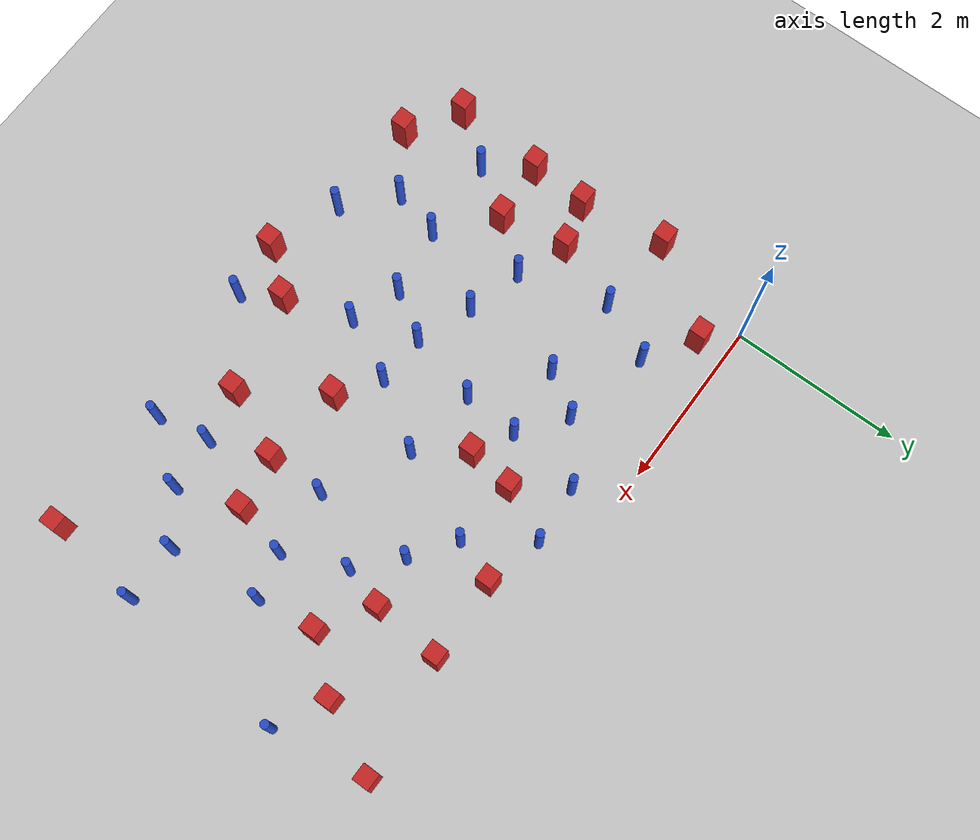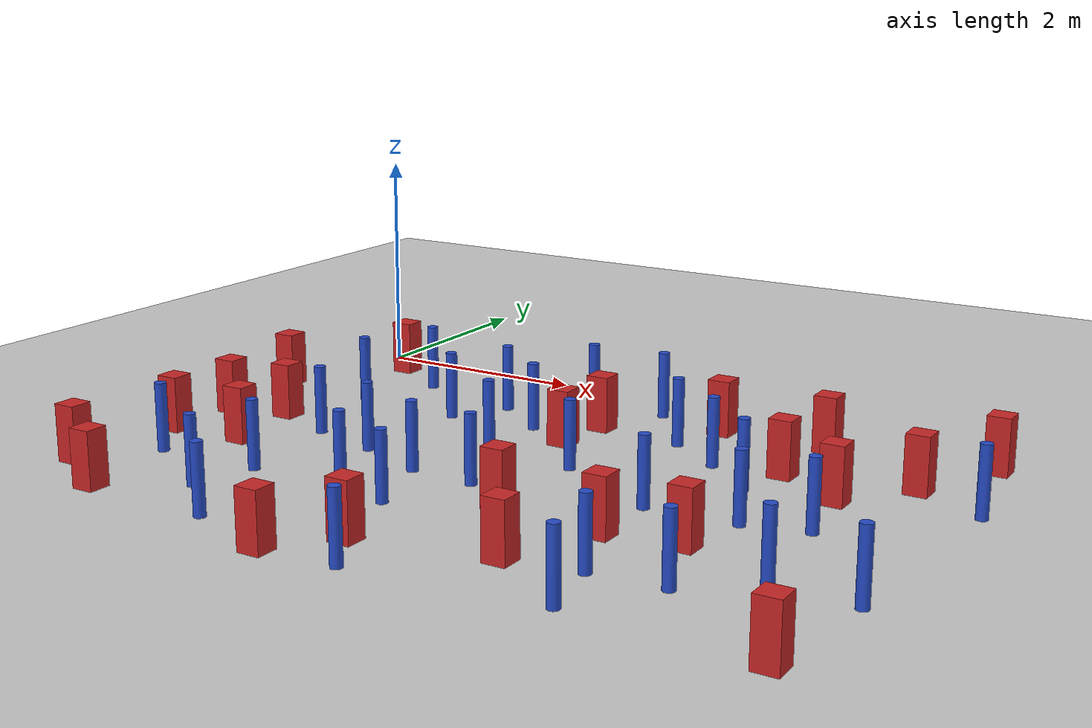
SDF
<sdf version="1.6">
 <world name="default">
  <model name="ground_plane">
   <static>1</static>
   <link name="link">
    <collision name="collision">
     <geometry><plane><normal>0 0 1</normal><size>100 100</size></plane></geometry>
     <surface><friction><ode><mu>100</mu><mu2>50</mu2></ode></friction></surface>
    </collision>
    <visual name="visual">
     <cast_shadows>0</cast_shadows>
     <geometry><plane><normal>0 0 1</normal><size>100 100</size></plane></geometry>
     <material>
      <ambient>1.0 1.0 1.0 1.0</ambient>
      <diffuse>0.8 0.8 0.8 1.0</diffuse>
      <specular>0.01 0.01 0.01 1.000000</specular>
     </material>
    </visual>
   </link>
  </model>
  <model name="pole_obstacle0">
   <static>true</static>
   <pose>4.2485173204 -1.44879922275 7.38925637345e-09 -8.471706928e-08 1.24976765134e-08 -1.74513093015e-07</pose>
   <link name="link">
    <pose>0 0 0.3 0 -0 0</pose>
    <inertial>
     <mass>1</mass>
     <inertia><ixx>0.145833</ixx><ixy>0</ixy><ixz>0</ixz><iyy>0.145833</iyy><iyz>0</iyz><izz>0.125</izz></inertia>
    </inertial>
    <collision name="collision">
     <geometry><cylinder><radius>0.05</radius><length>.6</length></cylinder></geometry>
    </collision>
    <visual name="visual">
     <geometry><cylinder><radius>0.05</radius><length>.6</length></cylinder></geometry>
     <material>
      <script><name>Gazebo/Blue</name><uri>file://media/materials/scripts/gazebo.material</uri></script>
     </material>
    </visual>
   </link>
  </model>
  <model name="pole_obstacle3">
   <static>true</static>
   <pose>6.49015581423 -1.49628110855 7.38925637345e-09 -8.471706928e-08 1.24976765134e-08 -1.74513093015e-07</pose>
   <link name="link">
    <pose>0 0 0.3 0 -0 0</pose>
    <inertial>
     <mass>1</mass>
     <inertia><ixx>0.145833</ixx><ixy>0</ixy><ixz>0</ixz><iyy>0.145833</iyy><iyz>0</iyz><izz>0.125</izz></inertia>
    </inertial>
    <collision name="collision">
     <geometry><cylinder><radius>0.05</radius><length>.6</length></cylinder></geometry>
    </collision>
    <visual name="visual">
     <geometry><cylinder><radius>0.05</radius><length>.6</length></cylinder></geometry>
     <material>
      <script><name>Gazebo/Blue</name><uri>file://media/materials/scripts/gazebo.material</uri></script>
     </material>
    </visual>
   </link>
  </model>
  <model name="square_post_obstacle23">
   <static>true</static>
   <pose>6.29252648759 -0.376676278191 1.91545236811e-07 -7.35059704564e-06 1.12565212e-07 2.39332434364e-05</pose>
   <link name="link">
    <pose>0 0 0.25 0 -0 0</pose>
    <inertial>
     <mass>100</mass>
     <inertia>
      <ixx>0.166667</ixx>
      <ixy>0</ixy>
      <ixz>0</ixz>
      <iyy>0.166667</iyy>
      <iyz>0</iyz>
      <izz>0.166667</izz>
     </inertia>
    </inertial>
    <collision name="collision"><geometry><box><size>.2 .2 .5</size></box></geometry></collision>
    <visual name="visual">
     <geometry><box><size>.2 .2 .5</size></box></geometry>
     <material>
      <script><name>Gazebo/Red</name><uri>file://media/materials/scripts/gazebo.material</uri></script>
     </material>
    </visual>
   </link>
  </model>
  <model name="pole_obstacle20">
   <static>true</static>
   <pose>1.94381249306 -0.957695889717 7.38925637345e-09 -8.47170692798e-08 1.24976765028e-08 -1.74513093019e-07</pose>
   <link name="link">
    <pose>0 0 0.3 0 -0 0</pose>
    <inertial>
     <mass>1</mass>
     <inertia><ixx>0.145833</ixx><ixy>0</ixy><ixz>0</ixz><iyy>0.145833</iyy><iyz>0</iyz><izz>0.125</izz></inertia>
    </inertial>
    <collision name="collision">
     <geometry><cylinder><radius>0.05</radius><length>.6</length></cylinder></geometry>
    </collision>
    <visual name="visual">
     <geometry><cylinder><radius>0.05</radius><length>.6</length></cylinder></geometry>
     <material>
      <script><name>Gazebo/Blue</name><uri>file://media/materials/scripts/gazebo.material</uri></script>
     </material>
    </visual>
   </link>
  </model>
  <model name="pole_obstacle24">
   <static>true</static>
   <pose>4.49639749609 -3.95909316292 7.38925637345e-09 -8.47170692799e-08 1.24976764984e-08 -1.7451309302e-07</pose>
   <link name="link">
    <pose>0 0 0.3 0 -0 0</pose>
    <inertial>
     <mass>1</mass>
     <inertia><ixx>0.145833</ixx><ixy>0</ixy><ixz>0</ixz><iyy>0.145833</iyy><iyz>0</iyz><izz>0.125</izz></inertia>
    </inertial>
    <collision name="collision">
     <geometry><cylinder><radius>0.05</radius><length>.6</length></cylinder></geometry>
    </collision>
    <visual name="visual">
     <geometry><cylinder><radius>0.05</radius><length>.6</length></cylinder></geometry>
     <material>
      <script><name>Gazebo/Blue</name><uri>file://media/materials/scripts/gazebo.material</uri></script>
     </material>
    </visual>
   </link>
  </model>
  <model name="pole_obstacle28">
   <static>true</static>
   <pose>3.7545110055 -1.09945312192 7.38925637345e-09 -8.471706928e-08 1.24976765152e-08 -1.74513093012e-07</pose>
   <link name="link">
    <pose>0 0 0.3 0 -0 0</pose>
    <inertial>
     <mass>1</mass>
     <inertia><ixx>0.145833</ixx><ixy>0</ixy><ixz>0</ixz><iyy>0.145833</iyy><iyz>0</iyz><izz>0.125</izz></inertia>
    </inertial>
    <collision name="collision">
     <geometry><cylinder><radius>0.05</radius><length>.6</length></cylinder></geometry>
    </collision>
    <visual name="visual">
     <geometry><cylinder><radius>0.05</radius><length>.6</length></cylinder></geometry>
     <material>
      <script><name>Gazebo/Blue</name><uri>file://media/materials/scripts/gazebo.material</uri></script>
     </material>
    </visual>
   </link>
  </model>
  <model name="pole_obstacle31">
   <static>true</static>
   <pose>1.10472437094 -3.48174567385 7.38925637345e-09 -8.47170692799e-08 1.24976765053e-08 -1.74513093017e-07</pose>
   <link name="link">
    <pose>0 0 0.3 0 -0 0</pose>
    <inertial>
     <mass>1</mass>
     <inertia><ixx>0.145833</ixx><ixy>0</ixy><ixz>0</ixz><iyy>0.145833</iyy><iyz>0</iyz><izz>0.125</izz></inertia>
    </inertial>
    <collision name="collision">
     <geometry><cylinder><radius>0.05</radius><length>.6</length></cylinder></geometry>
    </collision>
    <visual name="visual">
     <geometry><cylinder><radius>0.05</radius><length>.6</length></cylinder></geometry>
     <material>
      <script><name>Gazebo/Blue</name><uri>file://media/materials/scripts/gazebo.material</uri></script>
     </material>
    </visual>
   </link>
  </model>
  <model name="square_post_obstacle36">
   <static>true</static>
   <pose>4.23656312542 -3.28967679324 1.91545236811e-07 -7.35059704564e-06 1.12565212e-07 2.39332434364e-05</pose>
   <link name="link">
    <pose>0 0 0.25 0 -0 0</pose>
    <inertial>
     <mass>100</mass>
     <inertia>
      <ixx>0.166667</ixx>
      <ixy>0</ixy>
      <ixz>0</ixz>
      <iyy>0.166667</iyy>
      <iyz>0</iyz>
      <izz>0.166667</izz>
     </inertia>
    </inertial>
    <collision name="collision"><geometry><box><size>.2 .2 .5</size></box></geometry></collision>
    <visual name="visual">
     <geometry><box><size>.2 .2 .5</size></box></geometry>
     <material>
      <script><name>Gazebo/Red</name><uri>file://media/materials/scripts/gazebo.material</uri></script>
     </material>
    </visual>
   </link>
  </model>
  <model name="square_post_obstacle41">
   <static>true</static>
   <pose>4.83829002284 -1.3746859069 1.91545236811e-07 -7.35059704564e-06 1.12565212e-07 2.39332434364e-05</pose>
   <link name="link">
    <pose>0 0 0.25 0 -0 0</pose>
    <inertial>
     <mass>100</mass>
     <inertia>
      <ixx>0.166667</ixx>
      <ixy>0</ixy>
      <ixz>0</ixz>
      <iyy>0.166667</iyy>
      <iyz>0</iyz>
      <izz>0.166667</izz>
     </inertia>
    </inertial>
    <collision name="collision"><geometry><box><size>.2 .2 .5</size></box></geometry></collision>
    <visual name="visual">
     <geometry><box><size>.2 .2 .5</size></box></geometry>
     <material>
      <script><name>Gazebo/Red</name><uri>file://media/materials/scripts/gazebo.material</uri></script>
     </material>
    </visual>
   </link>
  </model>
  <model name="square_post_obstacle52">
   <static>true</static>
   <pose>2.72226242943 -4.33069814184 1.91545236811e-07 -7.35059704564e-06 1.12565212e-07 2.39332434364e-05</pose>
   <link name="link">
    <pose>0 0 0.25 0 -0 0</pose>
    <inertial>
     <mass>100</mass>
     <inertia>
      <ixx>0.166667</ixx>
      <ixy>0</ixy>
      <ixz>0</ixz>
      <iyy>0.166667</iyy>
      <iyz>0</iyz>
      <izz>0.166667</izz>
     </inertia>
    </inertial>
    <collision name="collision"><geometry><box><size>.2 .2 .5</size></box></geometry></collision>
    <visual name="visual">
     <geometry><box><size>.2 .2 .5</size></box></geometry>
     <material>
      <script><name>Gazebo/Red</name><uri>file://media/materials/scripts/gazebo.material</uri></script>
     </material>
    </visual>
   </link>
  </model>
  <model name="pole_obstacle60">
   <static>true</static>
   <pose>2.22409564554 -2.83301889603 7.38925637345e-09 -8.47170692798e-08 1.24976764939e-08 -1.74513093025e-07</pose>
   <link name="link">
    <pose>0 0 0.3 0 -0 0</pose>
    <inertial>
     <mass>1</mass>
     <inertia><ixx>0.145833</ixx><ixy>0</ixy><ixz>0</ixz><iyy>0.145833</iyy><iyz>0</iyz><izz>0.125</izz></inertia>
    </inertial>
    <collision name="collision">
     <geometry><cylinder><radius>0.05</radius><length>.6</length></cylinder></geometry>
    </collision>
    <visual name="visual">
     <geometry><cylinder><radius>0.05</radius><length>.6</length></cylinder></geometry>
     <material>
      <script><name>Gazebo/Blue</name><uri>file://media/materials/scripts/gazebo.material</uri></script>
     </material>
    </visual>
   </link>
  </model>
  <model name="pole_obstacle64">
   <static>true</static>
   <pose>0.12895167136 -3.51742941125 7.38925637345e-09 -8.47170692792e-08 1.24976764391e-08 -1.74513093041e-07</pose>
   <link name="link">
    <pose>0 0 0.3 0 -0 0</pose>
    <inertial>
     <mass>1</mass>
     <inertia><ixx>0.145833</ixx><ixy>0</ixy><ixz>0</ixz><iyy>0.145833</iyy><iyz>0</iyz><izz>0.125</izz></inertia>
    </inertial>
    <collision name="collision">
     <geometry><cylinder><radius>0.05</radius><length>.6</length></cylinder></geometry>
    </collision>
    <visual name="visual">
     <geometry><cylinder><radius>0.05</radius><length>.6</length></cylinder></geometry>
     <material>
      <script><name>Gazebo/Blue</name><uri>file://media/materials/scripts/gazebo.material</uri></script>
     </material>
    </visual>
   </link>
  </model>
  <model name="square_post_obstacle67">
   <static>true</static>
   <pose>6.16506351701 -4.63547756999 1.91545236811e-07 -7.35059704564e-06 1.12565212e-07 2.39332434364e-05</pose>
   <link name="link">
    <pose>0 0 0.25 0 -0 0</pose>
    <inertial>
     <mass>100</mass>
     <inertia>
      <ixx>0.166667</ixx>
      <ixy>0</ixy>
      <ixz>0</ixz>
      <iyy>0.166667</iyy>
      <iyz>0</iyz>
      <izz>0.166667</izz>
     </inertia>
    </inertial>
    <collision name="collision"><geometry><box><size>.2 .2 .5</size></box></geometry></collision>
    <visual name="visual">
     <geometry><box><size>.2 .2 .5</size></box></geometry>
     <material>
      <script><name>Gazebo/Red</name><uri>file://media/materials/scripts/gazebo.material</uri></script>
     </material>
    </visual>
   </link>
  </model>
  <model name="pole_obstacle68">
   <static>true</static>
   <pose>5.11422465955 -3.91232708425 7.38925637345e-09 -8.47170692798e-08 1.24976764937e-08 -1.74513093023e-07</pose>
   <link name="link">
    <pose>0 0 0.3 0 -0 0</pose>
    <inertial>
     <mass>1</mass>
     <inertia><ixx>0.145833</ixx><ixy>0</ixy><ixz>0</ixz><iyy>0.145833</iyy><iyz>0</iyz><izz>0.125</izz></inertia>
    </inertial>
    <collision name="collision">
     <geometry><cylinder><radius>0.05</radius><length>.6</length></cylinder></geometry>
    </collision>
    <visual name="visual">
     <geometry><cylinder><radius>0.05</radius><length>.6</length></cylinder></geometry>
     <material>
      <script><name>Gazebo/Blue</name><uri>file://media/materials/scripts/gazebo.material</uri></script>
     </material>
    </visual>
   </link>
  </model>
  <model name="pole_obstacle76">
   <static>true</static>
   <pose>6.31783616529 -3.52178806895 7.38925637345e-09 -8.47170692798e-08 1.24976764937e-08 -1.74513093023e-07</pose>
   <link name="link">
    <pose>0 0 0.3 0 -0 0</pose>
    <inertial>
     <mass>1</mass>
     <inertia><ixx>0.145833</ixx><ixy>0</ixy><ixz>0</ixz><iyy>0.145833</iyy><iyz>0</iyz><izz>0.125</izz></inertia>
    </inertial>
    <collision name="collision">
     <geometry><cylinder><radius>0.05</radius><length>.6</length></cylinder></geometry>
    </collision>
    <visual name="visual">
     <geometry><cylinder><radius>0.05</radius><length>.6</length></cylinder></geometry>
     <material>
      <script><name>Gazebo/Blue</name><uri>file://media/materials/scripts/gazebo.material</uri></script>
     </material>
    </visual>
   </link>
  </model>
  <model name="pole_obstacle88">
   <static>true</static>
   <pose>4.70499125762 -1.86015332015 7.38925637345e-09 -8.471706928e-08 1.24976765134e-08 -1.74513093015e-07</pose>
   <link name="link">
    <pose>0 0 0.3 0 -0 0</pose>
    <inertial>
     <mass>1</mass>
     <inertia><ixx>0.145833</ixx><ixy>0</ixy><ixz>0</ixz><iyy>0.145833</iyy><iyz>0</iyz><izz>0.125</izz></inertia>
    </inertial>
    <collision name="collision">
     <geometry><cylinder><radius>0.05</radius><length>.6</length></cylinder></geometry>
    </collision>
    <visual name="visual">
     <geometry><cylinder><radius>0.05</radius><length>.6</length></cylinder></geometry>
     <material>
      <script><name>Gazebo/Blue</name><uri>file://media/materials/scripts/gazebo.material</uri></script>
     </material>
    </visual>
   </link>
  </model>
  <model name="pole_obstacle98">
   <static>true</static>
   <pose>4.23293428149 -2.61917193267 7.38925637345e-09 -8.47170692798e-08 1.24976764937e-08 -1.74513093023e-07</pose>
   <link name="link">
    <pose>0 0 0.3 0 -0 0</pose>
    <inertial>
     <mass>1</mass>
     <inertia><ixx>0.145833</ixx><ixy>0</ixy><ixz>0</ixz><iyy>0.145833</iyy><iyz>0</iyz><izz>0.125</izz></inertia>
    </inertial>
    <collision name="collision">
     <geometry><cylinder><radius>0.05</radius><length>.6</length></cylinder></geometry>
    </collision>
    <visual name="visual">
     <geometry><cylinder><radius>0.05</radius><length>.6</length></cylinder></geometry>
     <material>
      <script><name>Gazebo/Blue</name><uri>file://media/materials/scripts/gazebo.material</uri></script>
     </material>
    </visual>
   </link>
  </model>
  <model name="pole_obstacle101">
   <static>true</static>
   <pose>0.633856967507 -1.38560738114 7.38925637345e-09 -8.47170692799e-08 1.24976765033e-08 -1.7451309302e-07</pose>
   <link name="link">
    <pose>0 0 0.3 0 -0 0</pose>
    <inertial>
     <mass>1</mass>
     <inertia><ixx>0.145833</ixx><ixy>0</ixy><ixz>0</ixz><iyy>0.145833</iyy><iyz>0</iyz><izz>0.125</izz></inertia>
    </inertial>
    <collision name="collision">
     <geometry><cylinder><radius>0.05</radius><length>.6</length></cylinder></geometry>
    </collision>
    <visual name="visual">
     <geometry><cylinder><radius>0.05</radius><length>.6</length></cylinder></geometry>
     <material>
      <script><name>Gazebo/Blue</name><uri>file://media/materials/scripts/gazebo.material</uri></script>
     </material>
    </visual>
   </link>
  </model>
  <model name="pole_obstacle103">
   <static>true</static>
   <pose>5.00692265733 -2.56688406407 7.38925637345e-09 -8.47170692798e-08 1.24976764937e-08 -1.74513093023e-07</pose>
   <link name="link">
    <pose>0 0 0.3 0 -0 0</pose>
    <inertial>
     <mass>1</mass>
     <inertia><ixx>0.145833</ixx><ixy>0</ixy><ixz>0</ixz><iyy>0.145833</iyy><iyz>0</iyz><izz>0.125</izz></inertia>
    </inertial>
    <collision name="collision">
     <geometry><cylinder><radius>0.05</radius><length>.6</length></cylinder></geometry>
    </collision>
    <visual name="visual">
     <geometry><cylinder><radius>0.05</radius><length>.6</length></cylinder></geometry>
     <material>
      <script><name>Gazebo/Blue</name><uri>file://media/materials/scripts/gazebo.material</uri></script>
     </material>
    </visual>
   </link>
  </model>
  <model name="square_post_obstacle98">
   <static>true</static>
   <pose>2.97786170531 -1.03406106497 1.91545236811e-07 -7.35059704564e-06 1.12565212e-07 2.39332434364e-05</pose>
   <link name="link">
    <pose>0 0 0.25 0 -0 0</pose>
    <inertial>
     <mass>100</mass>
     <inertia>
      <ixx>0.166667</ixx>
      <ixy>0</ixy>
      <ixz>0</ixz>
      <iyy>0.166667</iyy>
      <iyz>0</iyz>
      <izz>0.166667</izz>
     </inertia>
    </inertial>
    <collision name="collision"><geometry><box><size>.2 .2 .5</size></box></geometry></collision>
    <visual name="visual">
     <geometry><box><size>.2 .2 .5</size></box></geometry>
     <material>
      <script><name>Gazebo/Red</name><uri>file://media/materials/scripts/gazebo.material</uri></script>
     </material>
    </visual>
   </link>
  </model>
  <model name="square_post_obstacle99">
   <static>true</static>
   <pose>5.89797995365 -1.1797076675 1.91545236811e-07 -7.35059704564e-06 1.12565212e-07 2.39332434364e-05</pose>
   <link name="link">
    <pose>0 0 0.25 0 -0 0</pose>
    <inertial>
     <mass>100</mass>
     <inertia>
      <ixx>0.166667</ixx>
      <ixy>0</ixy>
      <ixz>0</ixz>
      <iyy>0.166667</iyy>
      <iyz>0</iyz>
      <izz>0.166667</izz>
     </inertia>
    </inertial>
    <collision name="collision"><geometry><box><size>.2 .2 .5</size></box></geometry></collision>
    <visual name="visual">
     <geometry><box><size>.2 .2 .5</size></box></geometry>
     <material>
      <script><name>Gazebo/Red</name><uri>file://media/materials/scripts/gazebo.material</uri></script>
     </material>
    </visual>
   </link>
  </model>
  <model name="square_post_obstacle101">
   <static>true</static>
   <pose>-0.174198176035 -2.32193776914 1.91545236811e-07 -7.35059704564e-06 1.12565212e-07 2.39332434364e-05</pose>
   <link name="link">
    <pose>0 0 0.25 0 -0 0</pose>
    <inertial>
     <mass>100</mass>
     <inertia>
      <ixx>0.166667</ixx>
      <ixy>0</ixy>
      <ixz>0</ixz>
      <iyy>0.166667</iyy>
      <iyz>0</iyz>
      <izz>0.166667</izz>
     </inertia>
    </inertial>
    <collision name="collision"><geometry><box><size>.2 .2 .5</size></box></geometry></collision>
    <visual name="visual">
     <geometry><box><size>.2 .2 .5</size></box></geometry>
     <material>
      <script><name>Gazebo/Red</name><uri>file://media/materials/scripts/gazebo.material</uri></script>
     </material>
    </visual>
   </link>
  </model>
  <model name="square_post_obstacle106">
   <static>true</static>
   <pose>3.28186755728 -3.18035090145 1.91545236811e-07 -7.35059704564e-06 1.12565212e-07 2.39332434364e-05</pose>
   <link name="link">
    <pose>0 0 0.25 0 -0 0</pose>
    <inertial>
     <mass>100</mass>
     <inertia>
      <ixx>0.166667</ixx>
      <ixy>0</ixy>
      <ixz>0</ixz>
      <iyy>0.166667</iyy>
      <iyz>0</iyz>
      <izz>0.166667</izz>
     </inertia>
    </inertial>
    <collision name="collision"><geometry><box><size>.2 .2 .5</size></box></geometry></collision>
    <visual name="visual">
     <geometry><box><size>.2 .2 .5</size></box></geometry>
     <material>
      <script><name>Gazebo/Red</name><uri>file://media/materials/scripts/gazebo.material</uri></script>
     </material>
    </visual>
   </link>
  </model>
  <model name="pole_obstacle119">
   <static>true</static>
   <pose>2.42213751352 -2.00007163748 7.38925637345e-09 -8.471706928e-08 1.2497676511e-08 -1.74513093015e-07</pose>
   <link name="link">
    <pose>0 0 0.3 0 -0 0</pose>
    <inertial>
     <mass>1</mass>
     <inertia><ixx>0.145833</ixx><ixy>0</ixy><ixz>0</ixz><iyy>0.145833</iyy><iyz>0</iyz><izz>0.125</izz></inertia>
    </inertial>
    <collision name="collision">
     <geometry><cylinder><radius>0.05</radius><length>.6</length></cylinder></geometry>
    </collision>
    <visual name="visual">
     <geometry><cylinder><radius>0.05</radius><length>.6</length></cylinder></geometry>
     <material>
      <script><name>Gazebo/Blue</name><uri>file://media/materials/scripts/gazebo.material</uri></script>
     </material>
    </visual>
   </link>
  </model>
  <model name="square_post_obstacle108">
   <static>true</static>
   <pose>0.493751813654 -2.95245227172 1.91545236811e-07 -7.35059704564e-06 1.12565212e-07 2.39332434364e-05</pose>
   <link name="link">
    <pose>0 0 0.25 0 -0 0</pose>
    <inertial>
     <mass>100</mass>
     <inertia>
      <ixx>0.166667</ixx>
      <ixy>0</ixy>
      <ixz>0</ixz>
      <iyy>0.166667</iyy>
      <iyz>0</iyz>
      <izz>0.166667</izz>
     </inertia>
    </inertial>
    <collision name="collision"><geometry><box><size>.2 .2 .5</size></box></geometry></collision>
    <visual name="visual">
     <geometry><box><size>.2 .2 .5</size></box></geometry>
     <material>
      <script><name>Gazebo/Red</name><uri>file://media/materials/scripts/gazebo.material</uri></script>
     </material>
    </visual>
   </link>
  </model>
  <model name="square_post_obstacle112">
   <static>true</static>
   <pose>4.8968400822 -0.569253807954 1.91545236811e-07 -7.35059704564e-06 1.12565212e-07 2.39332434364e-05</pose>
   <link name="link">
    <pose>0 0 0.25 0 -0 0</pose>
    <inertial>
     <mass>100</mass>
     <inertia>
      <ixx>0.166667</ixx>
      <ixy>0</ixy>
      <ixz>0</ixz>
      <iyy>0.166667</iyy>
      <iyz>0</iyz>
      <izz>0.166667</izz>
     </inertia>
    </inertial>
    <collision name="collision"><geometry><box><size>.2 .2 .5</size></box></geometry></collision>
    <visual name="visual">
     <geometry><box><size>.2 .2 .5</size></box></geometry>
     <material>
      <script><name>Gazebo/Red</name><uri>file://media/materials/scripts/gazebo.material</uri></script>
     </material>
    </visual>
   </link>
  </model>
  <model name="pole_obstacle122">
   <static>true</static>
   <pose>2.58184771099 -0.482952044775 7.38925637345e-09 -8.471706928e-08 1.2497676509e-08 -1.74513093016e-07</pose>
   <link name="link">
    <pose>0 0 0.3 0 -0 0</pose>
    <inertial>
     <mass>1</mass>
     <inertia><ixx>0.145833</ixx><ixy>0</ixy><ixz>0</ixz><iyy>0.145833</iyy><iyz>0</iyz><izz>0.125</izz></inertia>
    </inertial>
    <collision name="collision">
     <geometry><cylinder><radius>0.05</radius><length>.6</length></cylinder></geometry>
    </collision>
    <visual name="visual">
     <geometry><cylinder><radius>0.05</radius><length>.6</length></cylinder></geometry>
     <material>
      <script><name>Gazebo/Blue</name><uri>file://media/materials/scripts/gazebo.material</uri></script>
     </material>
    </visual>
   </link>
  </model>
  <model name="pole_obstacle134">
   <static>true</static>
   <pose>1.64461508249 -1.42850572355 7.38925637345e-09 -8.471706928e-08 1.24976765079e-08 -1.74513093017e-07</pose>
   <link name="link">
    <pose>0 0 0.3 0 -0 0</pose>
    <inertial>
     <mass>1</mass>
     <inertia><ixx>0.145833</ixx><ixy>0</ixy><ixz>0</ixz><iyy>0.145833</iyy><iyz>0</iyz><izz>0.125</izz></inertia>
    </inertial>
    <collision name="collision">
     <geometry><cylinder><radius>0.05</radius><length>.6</length></cylinder></geometry>
    </collision>
    <visual name="visual">
     <geometry><cylinder><radius>0.05</radius><length>.6</length></cylinder></geometry>
     <material>
      <script><name>Gazebo/Blue</name><uri>file://media/materials/scripts/gazebo.material</uri></script>
     </material>
    </visual>
   </link>
  </model>
  <model name="pole_obstacle135">
   <static>true</static>
   <pose>2.46822686364 -3.5647518971 7.38925637345e-09 -8.47170692798e-08 1.24976764939e-08 -1.74513093025e-07</pose>
   <link name="link">
    <pose>0 0 0.3 0 -0 0</pose>
    <inertial>
     <mass>1</mass>
     <inertia><ixx>0.145833</ixx><ixy>0</ixy><ixz>0</ixz><iyy>0.145833</iyy><iyz>0</iyz><izz>0.125</izz></inertia>
    </inertial>
    <collision name="collision">
     <geometry><cylinder><radius>0.05</radius><length>.6</length></cylinder></geometry>
    </collision>
    <visual name="visual">
     <geometry><cylinder><radius>0.05</radius><length>.6</length></cylinder></geometry>
     <material>
      <script><name>Gazebo/Blue</name><uri>file://media/materials/scripts/gazebo.material</uri></script>
     </material>
    </visual>
   </link>
  </model>
  <model name="square_post_obstacle117">
   <static>true</static>
   <pose>0.355024517556 -2.17441714093 1.91545236811e-07 -7.35059704564e-06 1.12565212e-07 2.39332434364e-05</pose>
   <link name="link">
    <pose>0 0 0.25 0 -0 0</pose>
    <inertial>
     <mass>100</mass>
     <inertia>
      <ixx>0.166667</ixx>
      <ixy>0</ixy>
      <ixz>0</ixz>
      <iyy>0.166667</iyy>
      <iyz>0</iyz>
      <izz>0.166667</izz>
     </inertia>
    </inertial>
    <collision name="collision"><geometry><box><size>.2 .2 .5</size></box></geometry></collision>
    <visual name="visual">
     <geometry><box><size>.2 .2 .5</size></box></geometry>
     <material>
      <script><name>Gazebo/Red</name><uri>file://media/materials/scripts/gazebo.material</uri></script>
     </material>
    </visual>
   </link>
  </model>
  <model name="square_post_obstacle118">
   <static>true</static>
   <pose>-0.301798432629 -4.09019549891 1.91545236811e-07 -7.35059704564e-06 1.12565212e-07 2.39332434364e-05</pose>
   <link name="link">
    <pose>0 0 0.25 0 -0 0</pose>
    <inertial>
     <mass>100</mass>
     <inertia>
      <ixx>0.166667</ixx>
      <ixy>0</ixy>
      <ixz>0</ixz>
      <iyy>0.166667</iyy>
      <iyz>0</iyz>
      <izz>0.166667</izz>
     </inertia>
    </inertial>
    <collision name="collision"><geometry><box><size>.2 .2 .5</size></box></geometry></collision>
    <visual name="visual">
     <geometry><box><size>.2 .2 .5</size></box></geometry>
     <material>
      <script><name>Gazebo/Red</name><uri>file://media/materials/scripts/gazebo.material</uri></script>
     </material>
    </visual>
   </link>
  </model>
  <model name="pole_obstacle139">
   <static>true</static>
   <pose>0.934466536211 -2.408170549 7.38925637345e-09 -8.47170692799e-08 1.2497676509e-08 -1.74513093016e-07</pose>
   <link name="link">
    <pose>0 0 0.3 0 -0 0</pose>
    <inertial>
     <mass>1</mass>
     <inertia><ixx>0.145833</ixx><ixy>0</ixy><ixz>0</ixz><iyy>0.145833</iyy><iyz>0</iyz><izz>0.125</izz></inertia>
    </inertial>
    <collision name="collision">
     <geometry><cylinder><radius>0.05</radius><length>.6</length></cylinder></geometry>
    </collision>
    <visual name="visual">
     <geometry><cylinder><radius>0.05</radius><length>.6</length></cylinder></geometry>
     <material>
      <script><name>Gazebo/Blue</name><uri>file://media/materials/scripts/gazebo.material</uri></script>
     </material>
    </visual>
   </link>
  </model>
  <model name="square_post_obstacle125">
   <static>true</static>
   <pose>4.86556133354 -3.18185350641 1.91545236811e-07 -7.35059704564e-06 1.12565212e-07 2.39332434364e-05</pose>
   <link name="link">
    <pose>0 0 0.25 0 -0 0</pose>
    <inertial>
     <mass>100</mass>
     <inertia>
      <ixx>0.166667</ixx>
      <ixy>0</ixy>
      <ixz>0</ixz>
      <iyy>0.166667</iyy>
      <iyz>0</iyz>
      <izz>0.166667</izz>
     </inertia>
    </inertial>
    <collision name="collision"><geometry><box><size>.2 .2 .5</size></box></geometry></collision>
    <visual name="visual">
     <geometry><box><size>.2 .2 .5</size></box></geometry>
     <material>
      <script><name>Gazebo/Red</name><uri>file://media/materials/scripts/gazebo.material</uri></script>
     </material>
    </visual>
   </link>
  </model>
  <model name="pole_obstacle140">
   <static>true</static>
   <pose>2.81579200064 -2.86235458398 7.38925637345e-09 -8.47170692798e-08 1.24976764939e-08 -1.74513093025e-07</pose>
   <link name="link">
    <pose>0 0 0.3 0 -0 0</pose>
    <inertial>
     <mass>1</mass>
     <inertia><ixx>0.145833</ixx><ixy>0</ixy><ixz>0</ixz><iyy>0.145833</iyy><iyz>0</iyz><izz>0.125</izz></inertia>
    </inertial>
    <collision name="collision">
     <geometry><cylinder><radius>0.05</radius><length>.6</length></cylinder></geometry>
    </collision>
    <visual name="visual">
     <geometry><cylinder><radius>0.05</radius><length>.6</length></cylinder></geometry>
     <material>
      <script><name>Gazebo/Blue</name><uri>file://media/materials/scripts/gazebo.material</uri></script>
     </material>
    </visual>
   </link>
  </model>
  <model name="pole_obstacle146">
   <static>true</static>
   <pose>4.61424388317 -4.57066686323 7.38925637345e-09 -8.47170692796e-08 1.24976764786e-08 -1.74513093032e-07</pose>
   <link name="link">
    <pose>0 0 0.3 0 -0 0</pose>
    <inertial>
     <mass>1</mass>
     <inertia><ixx>0.145833</ixx><ixy>0</ixy><ixz>0</ixz><iyy>0.145833</iyy><iyz>0</iyz><izz>0.125</izz></inertia>
    </inertial>
    <collision name="collision">
     <geometry><cylinder><radius>0.05</radius><length>.6</length></cylinder></geometry>
    </collision>
    <visual name="visual">
     <geometry><cylinder><radius>0.05</radius><length>.6</length></cylinder></geometry>
     <material>
      <script><name>Gazebo/Blue</name><uri>file://media/materials/scripts/gazebo.material</uri></script>
     </material>
    </visual>
   </link>
  </model>
  <model name="square_post_obstacle150">
   <static>true</static>
   <pose>-0.330435206246 -1.31277407822 1.91545236811e-07 -7.35059704564e-06 1.12565212e-07 2.39332434364e-05</pose>
   <link name="link">
    <pose>0 0 0.25 0 -0 0</pose>
    <inertial>
     <mass>100</mass>
     <inertia>
      <ixx>0.166667</ixx>
      <ixy>0</ixy>
      <ixz>0</ixz>
      <iyy>0.166667</iyy>
      <iyz>0</iyz>
      <izz>0.166667</izz>
     </inertia>
    </inertial>
    <collision name="collision"><geometry><box><size>.2 .2 .5</size></box></geometry></collision>
    <visual name="visual">
     <geometry><box><size>.2 .2 .5</size></box></geometry>
     <material>
      <script><name>Gazebo/Red</name><uri>file://media/materials/scripts/gazebo.material</uri></script>
     </material>
    </visual>
   </link>
  </model>
  <model name="pole_obstacle159">
   <static>true</static>
   <pose>5.5284675707 -2.4373370661 7.38925637345e-09 -8.47170692798e-08 1.24976764937e-08 -1.74513093023e-07</pose>
   <link name="link">
    <pose>0 0 0.3 0 -0 0</pose>
    <inertial>
     <mass>1</mass>
     <inertia><ixx>0.145833</ixx><ixy>0</ixy><ixz>0</ixz><iyy>0.145833</iyy><iyz>0</iyz><izz>0.125</izz></inertia>
    </inertial>
    <collision name="collision">
     <geometry><cylinder><radius>0.05</radius><length>.6</length></cylinder></geometry>
    </collision>
    <visual name="visual">
     <geometry><cylinder><radius>0.05</radius><length>.6</length></cylinder></geometry>
     <material>
      <script><name>Gazebo/Blue</name><uri>file://media/materials/scripts/gazebo.material</uri></script>
     </material>
    </visual>
   </link>
  </model>
  <model name="pole_obstacle161">
   <static>true</static>
   <pose>1.49199938716 -4.53130200718 7.38925637345e-09 -8.47170692799e-08 1.24976765033e-08 -1.74513093018e-07</pose>
   <link name="link">
    <pose>0 0 0.3 0 -0 0</pose>
    <inertial>
     <mass>1</mass>
     <inertia><ixx>0.145833</ixx><ixy>0</ixy><ixz>0</ixz><iyy>0.145833</iyy><iyz>0</iyz><izz>0.125</izz></inertia>
    </inertial>
    <collision name="collision">
     <geometry><cylinder><radius>0.05</radius><length>.6</length></cylinder></geometry>
    </collision>
    <visual name="visual">
     <geometry><cylinder><radius>0.05</radius><length>.6</length></cylinder></geometry>
     <material>
      <script><name>Gazebo/Blue</name><uri>file://media/materials/scripts/gazebo.material</uri></script>
     </material>
    </visual>
   </link>
  </model>
  <model name="square_post_obstacle161">
   <static>true</static>
   <pose>5.4257779054 -1.74764042258 1.91545236811e-07 -7.35059704564e-06 1.12565212e-07 2.39332434364e-05</pose>
   <link name="link">
    <pose>0 0 0.25 0 -0 0</pose>
    <inertial>
     <mass>100</mass>
     <inertia>
      <ixx>0.166667</ixx>
      <ixy>0</ixy>
      <ixz>0</ixz>
      <iyy>0.166667</iyy>
      <iyz>0</iyz>
      <izz>0.166667</izz>
     </inertia>
    </inertial>
    <collision name="collision"><geometry><box><size>.2 .2 .5</size></box></geometry></collision>
    <visual name="visual">
     <geometry><box><size>.2 .2 .5</size></box></geometry>
     <material>
      <script><name>Gazebo/Red</name><uri>file://media/materials/scripts/gazebo.material</uri></script>
     </material>
    </visual>
   </link>
  </model>
  <model name="pole_obstacle171">
   <static>true</static>
   <pose>5.64746031592 -3.50917904307 7.38925637345e-09 -8.47170692798e-08 1.24976764937e-08 -1.74513093023e-07</pose>
   <link name="link">
    <pose>0 0 0.3 0 -0 0</pose>
    <inertial>
     <mass>1</mass>
     <inertia><ixx>0.145833</ixx><ixy>0</ixy><ixz>0</ixz><iyy>0.145833</iyy><iyz>0</iyz><izz>0.125</izz></inertia>
    </inertial>
    <collision name="collision">
     <geometry><cylinder><radius>0.05</radius><length>.6</length></cylinder></geometry>
    </collision>
    <visual name="visual">
     <geometry><cylinder><radius>0.05</radius><length>.6</length></cylinder></geometry>
     <material>
      <script><name>Gazebo/Blue</name><uri>file://media/materials/scripts/gazebo.material</uri></script>
     </material>
    </visual>
   </link>
  </model>
  <model name="square_post_obstacle164">
   <static>true</static>
   <pose>2.90235336766 -1.5808082074 1.91545236811e-07 -7.35059704564e-06 1.12565212e-07 2.39332434364e-05</pose>
   <link name="link">
    <pose>0 0 0.25 0 -0 0</pose>
    <inertial>
     <mass>100</mass>
     <inertia>
      <ixx>0.166667</ixx>
      <ixy>0</ixy>
      <ixz>0</ixz>
      <iyy>0.166667</iyy>
      <iyz>0</iyz>
      <izz>0.166667</izz>
     </inertia>
    </inertial>
    <collision name="collision"><geometry><box><size>.2 .2 .5</size></box></geometry></collision>
    <visual name="visual">
     <geometry><box><size>.2 .2 .5</size></box></geometry>
     <material>
      <script><name>Gazebo/Red</name><uri>file://media/materials/scripts/gazebo.material</uri></script>
     </material>
    </visual>
   </link>
  </model>
  <model name="pole_obstacle177">
   <static>true</static>
   <pose>1.89549694914 -3.35222084586 7.38925637345e-09 -8.47170692799e-08 1.24976765053e-08 -1.74513093017e-07</pose>
   <link name="link">
    <pose>0 0 0.3 0 -0 0</pose>
    <inertial>
     <mass>1</mass>
     <inertia><ixx>0.145833</ixx><ixy>0</ixy><ixz>0</ixz><iyy>0.145833</iyy><iyz>0</iyz><izz>0.125</izz></inertia>
    </inertial>
    <collision name="collision">
     <geometry><cylinder><radius>0.05</radius><length>.6</length></cylinder></geometry>
    </collision>
    <visual name="visual">
     <geometry><cylinder><radius>0.05</radius><length>.6</length></cylinder></geometry>
     <material>
      <script><name>Gazebo/Blue</name><uri>file://media/materials/scripts/gazebo.material</uri></script>
     </material>
    </visual>
   </link>
  </model>
  <model name="square_post_obstacle170">
   <static>true</static>
   <pose>3.93403676934 -0.596313009059 1.91545236811e-07 -7.35059704564e-06 1.12565212e-07 2.39332434364e-05</pose>
   <link name="link">
    <pose>0 0 0.25 0 -0 0</pose>
    <inertial>
     <mass>100</mass>
     <inertia>
      <ixx>0.166667</ixx>
      <ixy>0</ixy>
      <ixz>0</ixz>
      <iyy>0.166667</iyy>
      <iyz>0</iyz>
      <izz>0.166667</izz>
     </inertia>
    </inertial>
    <collision name="collision"><geometry><box><size>.2 .2 .5</size></box></geometry></collision>
    <visual name="visual">
     <geometry><box><size>.2 .2 .5</size></box></geometry>
     <material>
      <script><name>Gazebo/Red</name><uri>file://media/materials/scripts/gazebo.material</uri></script>
     </material>
    </visual>
   </link>
  </model>
  <model name="square_post_obstacle175">
   <static>true</static>
   <pose>3.88469790873 -4.07764954018 1.91545236811e-07 -7.35059704564e-06 1.12565212e-07 2.39332434364e-05</pose>
   <link name="link">
    <pose>0 0 0.25 0 -0 0</pose>
    <inertial>
     <mass>100</mass>
     <inertia>
      <ixx>0.166667</ixx>
      <ixy>0</ixy>
      <ixz>0</ixz>
      <iyy>0.166667</iyy>
      <iyz>0</iyz>
      <izz>0.166667</izz>
     </inertia>
    </inertial>
    <collision name="collision"><geometry><box><size>.2 .2 .5</size></box></geometry></collision>
    <visual name="visual">
     <geometry><box><size>.2 .2 .5</size></box></geometry>
     <material>
      <script><name>Gazebo/Red</name><uri>file://media/materials/scripts/gazebo.material</uri></script>
     </material>
    </visual>
   </link>
  </model>
  <model name="square_post_obstacle185">
   <static>true</static>
   <pose>2.31163305985 -4.82506923652 1.91545236811e-07 -7.35059704564e-06 1.12565212e-07 2.39332434364e-05</pose>
   <link name="link">
    <pose>0 0 0.25 0 -0 0</pose>
    <inertial>
     <mass>100</mass>
     <inertia>
      <ixx>0.166667</ixx>
      <ixy>0</ixy>
      <ixz>0</ixz>
      <iyy>0.166667</iyy>
      <iyz>0</iyz>
      <izz>0.166667</izz>
     </inertia>
    </inertial>
    <collision name="collision"><geometry><box><size>.2 .2 .5</size></box></geometry></collision>
    <visual name="visual">
     <geometry><box><size>.2 .2 .5</size></box></geometry>
     <material>
      <script><name>Gazebo/Red</name><uri>file://media/materials/scripts/gazebo.material</uri></script>
     </material>
    </visual>
   </link>
  </model>
  <model name="square_post_obstacle190">
   <static>true</static>
   <pose>-0.212776971842 -3.00895855666 1.91545236811e-07 -7.35059704564e-06 1.12565212e-07 2.39332434364e-05</pose>
   <link name="link">
    <pose>0 0 0.25 0 -0 0</pose>
    <inertial>
     <mass>100</mass>
     <inertia>
      <ixx>0.166667</ixx>
      <ixy>0</ixy>
      <ixz>0</ixz>
      <iyy>0.166667</iyy>
      <iyz>0</iyz>
      <izz>0.166667</izz>
     </inertia>
    </inertial>
    <collision name="collision"><geometry><box><size>.2 .2 .5</size></box></geometry></collision>
    <visual name="visual">
     <geometry><box><size>.2 .2 .5</size></box></geometry>
     <material>
      <script><name>Gazebo/Red</name><uri>file://media/materials/scripts/gazebo.material</uri></script>
     </material>
    </visual>
   </link>
  </model>
  <model name="square_post_obstacle196">
   <static>true</static>
   <pose>0.363278834765 -0.352557672335 1.91545236811e-07 -7.35059704564e-06 1.12565212e-07 2.39332434364e-05</pose>
   <link name="link">
    <pose>0 0 0.25 0 -0 0</pose>
    <inertial>
     <mass>100</mass>
     <inertia>
      <ixx>0.166667</ixx>
      <ixy>0</ixy>
      <ixz>0</ixz>
      <iyy>0.166667</iyy>
      <iyz>0</iyz>
      <izz>0.166667</izz>
     </inertia>
    </inertial>
    <collision name="collision"><geometry><box><size>.2 .2 .5</size></box></geometry></collision>
    <visual name="visual">
     <geometry><box><size>.2 .2 .5</size></box></geometry>
     <material>
      <script><name>Gazebo/Red</name><uri>file://media/materials/scripts/gazebo.material</uri></script>
     </material>
    </visual>
   </link>
  </model>
  <model name="square_post_obstacle197">
   <static>true</static>
   <pose>0.299065934662 -4.49101879786 1.91545236811e-07 -7.35059704564e-06 1.12565212e-07 2.39332434364e-05</pose>
   <link name="link">
    <pose>0 0 0.25 0 -0 0</pose>
    <inertial>
     <mass>100</mass>
     <inertia>
      <ixx>0.166667</ixx>
      <ixy>0</ixy>
      <ixz>0</ixz>
      <iyy>0.166667</iyy>
      <iyz>0</iyz>
      <izz>0.166667</izz>
     </inertia>
    </inertial>
    <collision name="collision"><geometry><box><size>.2 .2 .5</size></box></geometry></collision>
    <visual name="visual">
     <geometry><box><size>.2 .2 .5</size></box></geometry>
     <material>
      <script><name>Gazebo/Red</name><uri>file://media/materials/scripts/gazebo.material</uri></script>
     </material>
    </visual>
   </link>
  </model>
  <model name="pole_obstacle194">
   <static>true</static>
   <pose>0.959531062741 -4.04200837107 7.38925637345e-09 -8.47170692799e-08 1.24976765041e-08 -1.74513093018e-07</pose>
   <link name="link">
    <pose>0 0 0.3 0 -0 0</pose>
    <inertial>
     <mass>1</mass>
     <inertia><ixx>0.145833</ixx><ixy>0</ixy><ixz>0</ixz><iyy>0.145833</iyy><iyz>0</iyz><izz>0.125</izz></inertia>
    </inertial>
    <collision name="collision">
     <geometry><cylinder><radius>0.05</radius><length>.6</length></cylinder></geometry>
    </collision>
    <visual name="visual">
     <geometry><cylinder><radius>0.05</radius><length>.6</length></cylinder></geometry>
     <material>
      <script><name>Gazebo/Blue</name><uri>file://media/materials/scripts/gazebo.material</uri></script>
     </material>
    </visual>
   </link>
  </model>
  <model name="pole_obstacle201">
   <static>true</static>
   <pose>2.45853233081 -1.34738748526 7.38925637345e-09 -8.471706928e-08 1.24976765152e-08 -1.74513093012e-07</pose>
   <link name="link">
    <pose>0 0 0.3 0 -0 0</pose>
    <inertial>
     <mass>1</mass>
     <inertia><ixx>0.145833</ixx><ixy>0</ixy><ixz>0</ixz><iyy>0.145833</iyy><iyz>0</iyz><izz>0.125</izz></inertia>
    </inertial>
    <collision name="collision">
     <geometry><cylinder><radius>0.05</radius><length>.6</length></cylinder></geometry>
    </collision>
    <visual name="visual">
     <geometry><cylinder><radius>0.05</radius><length>.6</length></cylinder></geometry>
     <material>
      <script><name>Gazebo/Blue</name><uri>file://media/materials/scripts/gazebo.material</uri></script>
     </material>
    </visual>
   </link>
  </model>
  <model name="pole_obstacle206">
   <static>true</static>
   <pose>0.938839775395 -0.721799706637 7.38925637345e-09 -8.47170692799e-08 1.24976765008e-08 -1.7451309302e-07</pose>
   <link name="link">
    <pose>0 0 0.3 0 -0 0</pose>
    <inertial>
     <mass>1</mass>
     <inertia><ixx>0.145833</ixx><ixy>0</ixy><ixz>0</ixz><iyy>0.145833</iyy><iyz>0</iyz><izz>0.125</izz></inertia>
    </inertial>
    <collision name="collision">
     <geometry><cylinder><radius>0.05</radius><length>.6</length></cylinder></geometry>
    </collision>
    <visual name="visual">
     <geometry><cylinder><radius>0.05</radius><length>.6</length></cylinder></geometry>
     <material>
      <script><name>Gazebo/Blue</name><uri>file://media/materials/scripts/gazebo.material</uri></script>
     </material>
    </visual>
   </link>
  </model>
  <model name="pole_obstacle207">
   <static>true</static>
   <pose>1.58341100898 -2.58385821474 7.38925637345e-09 -8.47170692799e-08 1.24976765053e-08 -1.74513093017e-07</pose>
   <link name="link">
    <pose>0 0 0.3 0 -0 0</pose>
    <inertial>
     <mass>1</mass>
     <inertia><ixx>0.145833</ixx><ixy>0</ixy><ixz>0</ixz><iyy>0.145833</iyy><iyz>0</iyz><izz>0.125</izz></inertia>
    </inertial>
    <collision name="collision">
     <geometry><cylinder><radius>0.05</radius><length>.6</length></cylinder></geometry>
    </collision>
    <visual name="visual">
     <geometry><cylinder><radius>0.05</radius><length>.6</length></cylinder></geometry>
     <material>
      <script><name>Gazebo/Blue</name><uri>file://media/materials/scripts/gazebo.material</uri></script>
     </material>
    </visual>
   </link>
  </model>
  <model name="pole_obstacle211">
   <static>true</static>
   <pose>3.26685028155 -0.420611197856 7.38925637345e-09 -8.471706928e-08 1.24976765172e-08 -1.74513093013e-07</pose>
   <link name="link">
    <pose>0 0 0.3 0 -0 0</pose>
    <inertial>
     <mass>1</mass>
     <inertia><ixx>0.145833</ixx><ixy>0</ixy><ixz>0</ixz><iyy>0.145833</iyy><iyz>0</iyz><izz>0.125</izz></inertia>
    </inertial>
    <collision name="collision">
     <geometry><cylinder><radius>0.05</radius><length>.6</length></cylinder></geometry>
    </collision>
    <visual name="visual">
     <geometry><cylinder><radius>0.05</radius><length>.6</length></cylinder></geometry>
     <material>
      <script><name>Gazebo/Blue</name><uri>file://media/materials/scripts/gazebo.material</uri></script>
     </material>
    </visual>
   </link>
  </model>
  <model name="pole_obstacle212">
   <static>true</static>
   <pose>2.98262033468 -4.76599000385 7.38925637345e-09 -8.47170692798e-08 1.24976765033e-08 -1.74513093019e-07</pose>
   <link name="link">
    <pose>0 0 0.3 0 -0 0</pose>
    <inertial>
     <mass>1</mass>
     <inertia><ixx>0.145833</ixx><ixy>0</ixy><ixz>0</ixz><iyy>0.145833</iyy><iyz>0</iyz><izz>0.125</izz></inertia>
    </inertial>
    <collision name="collision">
     <geometry><cylinder><radius>0.05</radius><length>.6</length></cylinder></geometry>
    </collision>
    <visual name="visual">
     <geometry><cylinder><radius>0.05</radius><length>.6</length></cylinder></geometry>
     <material>
      <script><name>Gazebo/Blue</name><uri>file://media/materials/scripts/gazebo.material</uri></script>
     </material>
    </visual>
   </link>
  </model>
  <model name="pole_obstacle220">
   <static>true</static>
   <pose>3.29030295369 -2.12333486364 7.38925637345e-09 -8.47170692798e-08 1.24976764939e-08 -1.74513093025e-07</pose>
   <link name="link">
    <pose>0 0 0.3 0 -0 0</pose>
    <inertial>
     <mass>1</mass>
     <inertia><ixx>0.145833</ixx><ixy>0</ixy><ixz>0</ixz><iyy>0.145833</iyy><iyz>0</iyz><izz>0.125</izz></inertia>
    </inertial>
    <collision name="collision">
     <geometry><cylinder><radius>0.05</radius><length>.6</length></cylinder></geometry>
    </collision>
    <visual name="visual">
     <geometry><cylinder><radius>0.05</radius><length>.6</length></cylinder></geometry>
     <material>
      <script><name>Gazebo/Blue</name><uri>file://media/materials/scripts/gazebo.material</uri></script>
     </material>
    </visual>
   </link>
  </model>
 </world>
</sdf>
